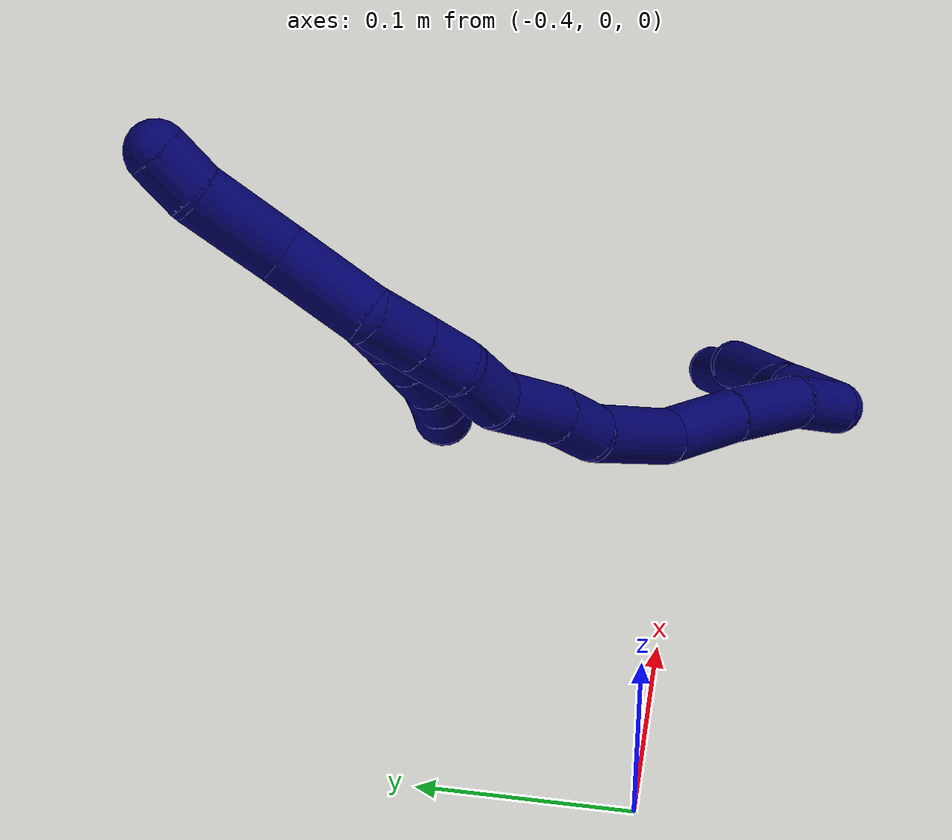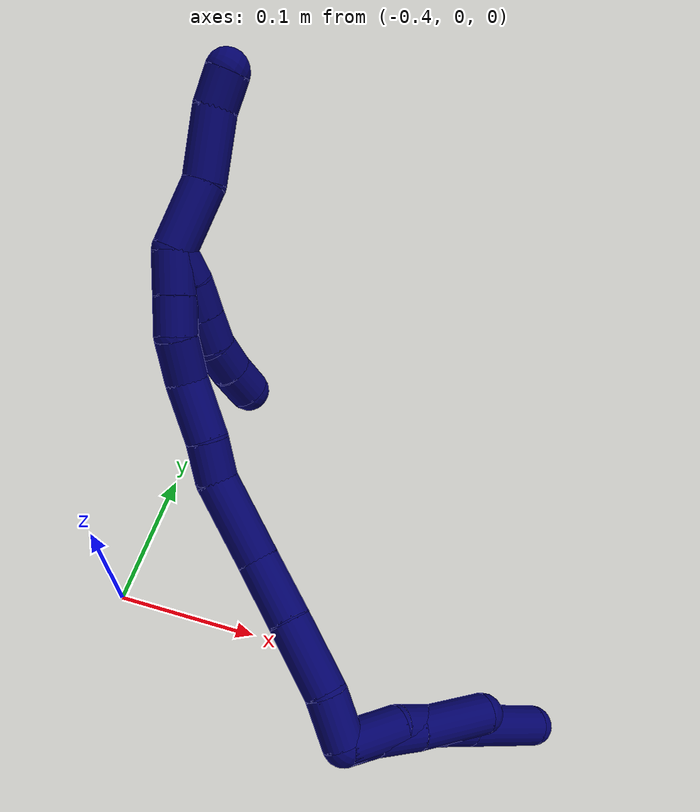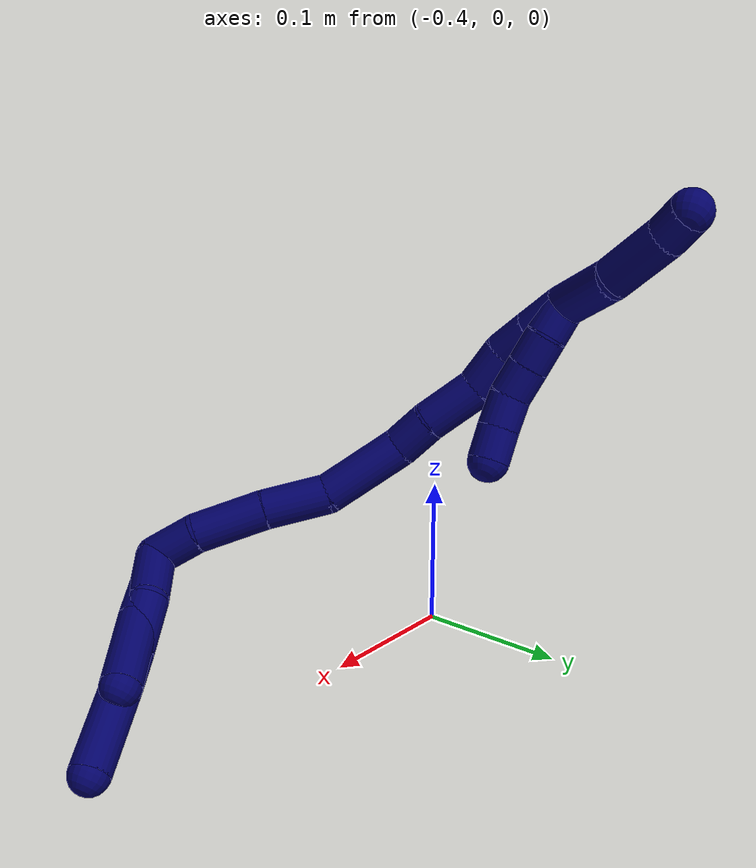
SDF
<sdf version="1.7">
 <world name="default">
  <model name="7">
   <static>0</static>
   <link name="7">
    <collision name="collision-cylinder-e_1_2_8">
     <pose>-0.005158 0.008258 -0.015625 -2.65542 -0.283959 1.04577</pose>
     <geometry><cylinder><radius>0.0125</radius><length>0.036821</length></cylinder></geometry>
     <surface>
      <friction><ode><mu>1.16</mu><mu2>1.16</mu2><slip1>0</slip1><slip2>0</slip2></ode></friction>
      <contact><ode><kp>1e+06</kp><kd>1</kd><max_vel>0</max_vel><min_depth>0.001</min_depth></ode></contact>
     </surface>
    </collision>
    <visual name="visual-cylinder-e_1_2_8">
     <pose>-0.005158 0.008258 -0.015625 -2.65542 -0.283959 1.04577</pose>
     <geometry><cylinder><radius>0.0125</radius><length>0.036821</length></cylinder></geometry>
     <material><ambient>0.003922 0 0.403922 1</ambient></material>
    </visual>
    <collision name="collision-cylinder-e_2_8_9">
     <pose>-0.013663 0.01979 -0.048232 -2.95112 -0.191185 1.57453</pose>
     <geometry><cylinder><radius>0.0125</radius><length>0.03523</length></cylinder></geometry>
     <surface>
      <friction><ode><mu>1.16</mu><mu2>1.16</mu2><slip1>0</slip1><slip2>0</slip2></ode></friction>
      <contact><ode><kp>1e+06</kp><kd>1</kd><max_vel>0</max_vel><min_depth>0.001</min_depth></ode></contact>
     </surface>
    </collision>
    <visual name="visual-cylinder-e_2_8_9">
     <pose>-0.013663 0.01979 -0.048232 -2.95112 -0.191185 1.57453</pose>
     <geometry><cylinder><radius>0.0125</radius><length>0.03523</length></cylinder></geometry>
     <material><ambient>0.003922 0 0.403922 1</ambient></material>
    </visual>
    <collision name="collision-cylinder-e_3_9_10">
     <pose>-0.018875 0.025199 -0.076164 -2.94904 -0.165636 1.41999</pose>
     <geometry><cylinder><radius>0.0125</radius><length>0.022624</length></cylinder></geometry>
     <surface>
      <friction><ode><mu>1.16</mu><mu2>1.16</mu2><slip1>0</slip1><slip2>0</slip2></ode></friction>
      <contact><ode><kp>1e+06</kp><kd>1</kd><max_vel>0</max_vel><min_depth>0.001</min_depth></ode></contact>
     </surface>
    </collision>
    <visual name="visual-cylinder-e_3_9_10">
     <pose>-0.018875 0.025199 -0.076164 -2.94904 -0.165636 1.41999</pose>
     <geometry><cylinder><radius>0.0125</radius><length>0.022624</length></cylinder></geometry>
     <material><ambient>0.003922 0 0.403922 1</ambient></material>
    </visual>
    <collision name="collision-cylinder-e_4_10_6">
     <pose>-0.024447 0.033891 -0.113733 -2.90006 -0.134383 1.01259</pose>
     <geometry><cylinder><radius>0.0125</radius><length>0.055325</length></cylinder></geometry>
     <surface>
      <friction><ode><mu>1.16</mu><mu2>1.16</mu2><slip1>0</slip1><slip2>0</slip2></ode></friction>
      <contact><ode><kp>1e+06</kp><kd>1</kd><max_vel>0</max_vel><min_depth>0.001</min_depth></ode></contact>
     </surface>
    </collision>
    <visual name="visual-cylinder-e_4_10_6">
     <pose>-0.024447 0.033891 -0.113733 -2.90006 -0.134383 1.01259</pose>
     <geometry><cylinder><radius>0.0125</radius><length>0.055325</length></cylinder></geometry>
     <material><ambient>0.003922 0 0.403922 1</ambient></material>
    </visual>
    <collision name="collision-cylinder-e_1_2_11">
     <pose>-0.002999 0.003931 -0.009198 -2.73767 -0.291273 1.24324</pose>
     <geometry><cylinder><radius>0.0125</radius><length>0.020886</length></cylinder></geometry>
     <surface>
      <friction><ode><mu>1.16</mu><mu2>1.16</mu2><slip1>0</slip1><slip2>0</slip2></ode></friction>
      <contact><ode><kp>1e+06</kp><kd>1</kd><max_vel>0</max_vel><min_depth>0.001</min_depth></ode></contact>
     </surface>
    </collision>
    <visual name="visual-cylinder-e_1_2_11">
     <pose>-0.002999 0.003931 -0.009198 -2.73767 -0.291273 1.24324</pose>
     <geometry><cylinder><radius>0.0125</radius><length>0.020886</length></cylinder></geometry>
     <material><ambient>0.003922 0 0.403922 1</ambient></material>
    </visual>
    <collision name="collision-cylinder-e_2_11_12">
     <pose>-0.008493 0.013252 -0.031923 -2.76248 -0.169695 0.834534</pose>
     <geometry><cylinder><radius>0.0125</radius><length>0.029545</length></cylinder></geometry>
     <surface>
      <friction><ode><mu>1.16</mu><mu2>1.16</mu2><slip1>0</slip1><slip2>0</slip2></ode></friction>
      <contact><ode><kp>1e+06</kp><kd>1</kd><max_vel>0</max_vel><min_depth>0.001</min_depth></ode></contact>
     </surface>
    </collision>
    <visual name="visual-cylinder-e_2_11_12">
     <pose>-0.008493 0.013252 -0.031923 -2.76248 -0.169695 0.834534</pose>
     <geometry><cylinder><radius>0.0125</radius><length>0.029545</length></cylinder></geometry>
     <material><ambient>0.003922 0 0.403922 1</ambient></material>
    </visual>
    <collision name="collision-cylinder-e_3_12_5">
     <pose>-0.016473 0.028721 -0.067417 -2.71137 -0.223156 0.947669</pose>
     <geometry><cylinder><radius>0.0125</radius><length>0.049569</length></cylinder></geometry>
     <surface>
      <friction><ode><mu>1.16</mu><mu2>1.16</mu2><slip1>0</slip1><slip2>0</slip2></ode></friction>
      <contact><ode><kp>1e+06</kp><kd>1</kd><max_vel>0</max_vel><min_depth>0.001</min_depth></ode></contact>
     </surface>
    </collision>
    <visual name="visual-cylinder-e_3_12_5">
     <pose>-0.016473 0.028721 -0.067417 -2.71137 -0.223156 0.947669</pose>
     <geometry><cylinder><radius>0.0125</radius><length>0.049569</length></cylinder></geometry>
     <material><ambient>0.003922 0 0.403922 1</ambient></material>
    </visual>
    <collision name="collision-cylinder-e_1_2_13">
     <pose>-0.009245 0.006906 0.009767 -0.615445 -0.65794 0.216145</pose>
     <geometry><cylinder><radius>0.0125</radius><length>0.030237</length></cylinder></geometry>
     <surface>
      <friction><ode><mu>1.16</mu><mu2>1.16</mu2><slip1>0</slip1><slip2>0</slip2></ode></friction>
      <contact><ode><kp>1e+06</kp><kd>1</kd><max_vel>0</max_vel><min_depth>0.001</min_depth></ode></contact>
     </surface>
    </collision>
    <visual name="visual-cylinder-e_1_2_13">
     <pose>-0.009245 0.006906 0.009767 -0.615445 -0.65794 0.216145</pose>
     <geometry><cylinder><radius>0.0125</radius><length>0.030237</length></cylinder></geometry>
     <material><ambient>0.003922 0 0.403922 1</ambient></material>
    </visual>
    <collision name="collision-cylinder-e_2_13_14">
     <pose>-0.034908 0.01951 0.033301 -0.392406 -0.833883 0.175613</pose>
     <geometry><cylinder><radius>0.0125</radius><length>0.044341</length></cylinder></geometry>
     <surface>
      <friction><ode><mu>1.16</mu><mu2>1.16</mu2><slip1>0</slip1><slip2>0</slip2></ode></friction>
      <contact><ode><kp>1e+06</kp><kd>1</kd><max_vel>0</max_vel><min_depth>0.001</min_depth></ode></contact>
     </surface>
    </collision>
    <visual name="visual-cylinder-e_2_13_14">
     <pose>-0.034908 0.01951 0.033301 -0.392406 -0.833883 0.175613</pose>
     <geometry><cylinder><radius>0.0125</radius><length>0.044341</length></cylinder></geometry>
     <material><ambient>0.003922 0 0.403922 1</ambient></material>
    </visual>
    <collision name="collision-cylinder-e_3_14_15">
     <pose>-0.067236 0.029203 0.058466 -0.337143 -0.921461 0.168547</pose>
     <geometry><cylinder><radius>0.0125</radius><length>0.039951</length></cylinder></geometry>
     <surface>
      <friction><ode><mu>1.16</mu><mu2>1.16</mu2><slip1>0</slip1><slip2>0</slip2></ode></friction>
      <contact><ode><kp>1e+06</kp><kd>1</kd><max_vel>0</max_vel><min_depth>0.001</min_depth></ode></contact>
     </surface>
    </collision>
    <visual name="visual-cylinder-e_3_14_15">
     <pose>-0.067236 0.029203 0.058466 -0.337143 -0.921461 0.168547</pose>
     <geometry><cylinder><radius>0.0125</radius><length>0.039951</length></cylinder></geometry>
     <material><ambient>0.003922 0 0.403922 1</ambient></material>
    </visual>
    <collision name="collision-cylinder-e_4_15_16">
     <pose>-0.097696 0.042768 0.089549 -0.452505 -0.586666 0.138835</pose>
     <geometry><cylinder><radius>0.0125</radius><length>0.052566</length></cylinder></geometry>
     <surface>
      <friction><ode><mu>1.16</mu><mu2>1.16</mu2><slip1>0</slip1><slip2>0</slip2></ode></friction>
      <contact><ode><kp>1e+06</kp><kd>1</kd><max_vel>0</max_vel><min_depth>0.001</min_depth></ode></contact>
     </surface>
    </collision>
    <visual name="visual-cylinder-e_4_15_16">
     <pose>-0.097696 0.042768 0.089549 -0.452505 -0.586666 0.138835</pose>
     <geometry><cylinder><radius>0.0125</radius><length>0.052566</length></cylinder></geometry>
     <material><ambient>0.003922 0 0.403922 1</ambient></material>
    </visual>
    <collision name="collision-cylinder-e_5_16_17">
     <pose>-0.117323 0.059843 0.117251 -0.75245 -0.433059 0.173366</pose>
     <geometry><cylinder><radius>0.0125</radius><length>0.024197</length></cylinder></geometry>
     <surface>
      <friction><ode><mu>1.16</mu><mu2>1.16</mu2><slip1>0</slip1><slip2>0</slip2></ode></friction>
      <contact><ode><kp>1e+06</kp><kd>1</kd><max_vel>0</max_vel><min_depth>0.001</min_depth></ode></contact>
     </surface>
    </collision>
    <visual name="visual-cylinder-e_5_16_17">
     <pose>-0.117323 0.059843 0.117251 -0.75245 -0.433059 0.173366</pose>
     <geometry><cylinder><radius>0.0125</radius><length>0.024197</length></cylinder></geometry>
     <material><ambient>0.003922 0 0.403922 1</ambient></material>
    </visual>
    <collision name="collision-cylinder-e_6_17_18">
     <pose>-0.131748 0.076242 0.137488 -0.629176 -0.553922 0.184472</pose>
     <geometry><cylinder><radius>0.0125</radius><length>0.035542</length></cylinder></geometry>
     <surface>
      <friction><ode><mu>1.16</mu><mu2>1.16</mu2><slip1>0</slip1><slip2>0</slip2></ode></friction>
      <contact><ode><kp>1e+06</kp><kd>1</kd><max_vel>0</max_vel><min_depth>0.001</min_depth></ode></contact>
     </surface>
    </collision>
    <visual name="visual-cylinder-e_6_17_18">
     <pose>-0.131748 0.076242 0.137488 -0.629176 -0.553922 0.184472</pose>
     <geometry><cylinder><radius>0.0125</radius><length>0.035542</length></cylinder></geometry>
     <material><ambient>0.003922 0 0.403922 1</ambient></material>
    </visual>
    <collision name="collision-cylinder-e_7_18_19">
     <pose>-0.144137 0.093953 0.159082 -0.754751 -0.232017 0.092314</pose>
     <geometry><cylinder><radius>0.0125</radius><length>0.026446</length></cylinder></geometry>
     <surface>
      <friction><ode><mu>1.16</mu><mu2>1.16</mu2><slip1>0</slip1><slip2>0</slip2></ode></friction>
      <contact><ode><kp>1e+06</kp><kd>1</kd><max_vel>0</max_vel><min_depth>0.001</min_depth></ode></contact>
     </surface>
    </collision>
    <visual name="visual-cylinder-e_7_18_19">
     <pose>-0.144137 0.093953 0.159082 -0.754751 -0.232017 0.092314</pose>
     <geometry><cylinder><radius>0.0125</radius><length>0.026446</length></cylinder></geometry>
     <material><ambient>0.003922 0 0.403922 1</ambient></material>
    </visual>
    <collision name="collision-cylinder-e_8_19_20">
     <pose>-0.152051 0.111234 0.174042 -0.98744 -0.447995 0.243998</pose>
     <geometry><cylinder><radius>0.0125</radius><length>0.022504</length></cylinder></geometry>
     <surface>
      <friction><ode><mu>1.16</mu><mu2>1.16</mu2><slip1>0</slip1><slip2>0</slip2></ode></friction>
      <contact><ode><kp>1e+06</kp><kd>1</kd><max_vel>0</max_vel><min_depth>0.001</min_depth></ode></contact>
     </surface>
    </collision>
    <visual name="visual-cylinder-e_8_19_20">
     <pose>-0.152051 0.111234 0.174042 -0.98744 -0.447995 0.243998</pose>
     <geometry><cylinder><radius>0.0125</radius><length>0.022504</length></cylinder></geometry>
     <material><ambient>0.003922 0 0.403922 1</ambient></material>
    </visual>
    <collision name="collision-cylinder-e_9_20_1">
     <pose>-0.162269 0.128742 0.18565 -0.98333 -0.457109 0.247872</pose>
     <geometry><cylinder><radius>0.0125</radius><length>0.024217</length></cylinder></geometry>
     <surface>
      <friction><ode><mu>1.16</mu><mu2>1.16</mu2><slip1>0</slip1><slip2>0</slip2></ode></friction>
      <contact><ode><kp>1e+06</kp><kd>1</kd><max_vel>0</max_vel><min_depth>0.001</min_depth></ode></contact>
     </surface>
    </collision>
    <visual name="visual-cylinder-e_9_20_1">
     <pose>-0.162269 0.128742 0.18565 -0.98333 -0.457109 0.247872</pose>
     <geometry><cylinder><radius>0.0125</radius><length>0.024217</length></cylinder></geometry>
     <material><ambient>0.003922 0 0.403922 1</ambient></material>
    </visual>
    <collision name="collision-cylinder-e_1_1_21">
     <pose>-0.175848 0.156086 0.193518 -1.47027 -0.420922 0.381624</pose>
     <geometry><cylinder><radius>0.0125</radius><length>0.040304</length></cylinder></geometry>
     <surface>
      <friction><ode><mu>1.16</mu><mu2>1.16</mu2><slip1>0</slip1><slip2>0</slip2></ode></friction>
      <contact><ode><kp>1e+06</kp><kd>1</kd><max_vel>0</max_vel><min_depth>0.001</min_depth></ode></contact>
     </surface>
    </collision>
    <visual name="visual-cylinder-e_1_1_21">
     <pose>-0.175848 0.156086 0.193518 -1.47027 -0.420922 0.381624</pose>
     <geometry><cylinder><radius>0.0125</radius><length>0.040304</length></cylinder></geometry>
     <material><ambient>0.003922 0 0.403922 1</ambient></material>
    </visual>
    <collision name="collision-cylinder-e_2_21_22">
     <pose>-0.19179 0.190955 0.202539 -1.16216 -0.403512 0.267049</pose>
     <geometry><cylinder><radius>0.0125</radius><length>0.039265</length></cylinder></geometry>
     <surface>
      <friction><ode><mu>1.16</mu><mu2>1.16</mu2><slip1>0</slip1><slip2>0</slip2></ode></friction>
      <contact><ode><kp>1e+06</kp><kd>1</kd><max_vel>0</max_vel><min_depth>0.001</min_depth></ode></contact>
     </surface>
    </collision>
    <visual name="visual-cylinder-e_2_21_22">
     <pose>-0.19179 0.190955 0.202539 -1.16216 -0.403512 0.267049</pose>
     <geometry><cylinder><radius>0.0125</radius><length>0.039265</length></cylinder></geometry>
     <material><ambient>0.003922 0 0.403922 1</ambient></material>
    </visual>
    <collision name="collision-cylinder-e_3_22_4">
     <pose>-0.201798 0.217174 0.212151 -1.3233 -0.226948 0.177035</pose>
     <geometry><cylinder><radius>0.0125</radius><length>0.020431</length></cylinder></geometry>
     <surface>
      <friction><ode><mu>1.16</mu><mu2>1.16</mu2><slip1>0</slip1><slip2>0</slip2></ode></friction>
      <contact><ode><kp>1e+06</kp><kd>1</kd><max_vel>0</max_vel><min_depth>0.001</min_depth></ode></contact>
     </surface>
    </collision>
    <visual name="visual-cylinder-e_3_22_4">
     <pose>-0.201798 0.217174 0.212151 -1.3233 -0.226948 0.177035</pose>
     <geometry><cylinder><radius>0.0125</radius><length>0.020431</length></cylinder></geometry>
     <material><ambient>0.003922 0 0.403922 1</ambient></material>
    </visual>
    <collision name="collision-cylinder-e_1_1_23">
     <pose>-0.166389 0.133074 0.182937 2.64698 0.12277 0.477586</pose>
     <geometry><cylinder><radius>0.0125</radius><length>0.02</length></cylinder></geometry>
     <surface>
      <friction><ode><mu>1.16</mu><mu2>1.16</mu2><slip1>0</slip1><slip2>0</slip2></ode></friction>
      <contact><ode><kp>1e+06</kp><kd>1</kd><max_vel>0</max_vel><min_depth>0.001</min_depth></ode></contact>
     </surface>
    </collision>
    <visual name="visual-cylinder-e_1_1_23">
     <pose>-0.166389 0.133074 0.182937 2.64698 0.12277 0.477586</pose>
     <geometry><cylinder><radius>0.0125</radius><length>0.02</length></cylinder></geometry>
     <material><ambient>0.003922 0 0.403922 1</ambient></material>
    </visual>
    <collision name="collision-cylinder-e_2_23_24">
     <pose>-0.163975 0.122401 0.166262 2.49758 0.119159 0.353854</pose>
     <geometry><cylinder><radius>0.0125</radius><length>0.02</length></cylinder></geometry>
     <surface>
      <friction><ode><mu>1.16</mu><mu2>1.16</mu2><slip1>0</slip1><slip2>0</slip2></ode></friction>
      <contact><ode><kp>1e+06</kp><kd>1</kd><max_vel>0</max_vel><min_depth>0.001</min_depth></ode></contact>
     </surface>
    </collision>
    <visual name="visual-cylinder-e_2_23_24">
     <pose>-0.163975 0.122401 0.166262 2.49758 0.119159 0.353854</pose>
     <geometry><cylinder><radius>0.0125</radius><length>0.02</length></cylinder></geometry>
     <material><ambient>0.003922 0 0.403922 1</ambient></material>
    </visual>
    <collision name="collision-cylinder-e_3_24_25">
     <pose>-0.16147 0.110647 0.150277 2.5175 0.132059 0.404373</pose>
     <geometry><cylinder><radius>0.0125</radius><length>0.02</length></cylinder></geometry>
     <surface>
      <friction><ode><mu>1.16</mu><mu2>1.16</mu2><slip1>0</slip1><slip2>0</slip2></ode></friction>
      <contact><ode><kp>1e+06</kp><kd>1</kd><max_vel>0</max_vel><min_depth>0.001</min_depth></ode></contact>
     </surface>
    </collision>
    <visual name="visual-cylinder-e_3_24_25">
     <pose>-0.16147 0.110647 0.150277 2.5175 0.132059 0.404373</pose>
     <geometry><cylinder><radius>0.0125</radius><length>0.02</length></cylinder></geometry>
     <material><ambient>0.003922 0 0.403922 1</ambient></material>
    </visual>
    <collision name="collision-cylinder-e_4_25_26">
     <pose>-0.160813 0.100761 0.133133 2.71887 -0.06607 -0.305629</pose>
     <geometry><cylinder><radius>0.0125</radius><length>0.02</length></cylinder></geometry>
     <surface>
      <friction><ode><mu>1.16</mu><mu2>1.16</mu2><slip1>0</slip1><slip2>0</slip2></ode></friction>
      <contact><ode><kp>1e+06</kp><kd>1</kd><max_vel>0</max_vel><min_depth>0.001</min_depth></ode></contact>
     </surface>
    </collision>
    <visual name="visual-cylinder-e_4_25_26">
     <pose>-0.160813 0.100761 0.133133 2.71887 -0.06607 -0.305629</pose>
     <geometry><cylinder><radius>0.0125</radius><length>0.02</length></cylinder></geometry>
     <material><ambient>0.003922 0 0.403922 1</ambient></material>
    </visual>
    <collision name="collision-cylinder-e_5_26_3">
     <pose>-0.162506 0.093436 0.114626 2.81069 -0.103486 -0.601497</pose>
     <geometry><cylinder><radius>0.0125</radius><length>0.02</length></cylinder></geometry>
     <surface>
      <friction><ode><mu>1.16</mu><mu2>1.16</mu2><slip1>0</slip1><slip2>0</slip2></ode></friction>
      <contact><ode><kp>1e+06</kp><kd>1</kd><max_vel>0</max_vel><min_depth>0.001</min_depth></ode></contact>
     </surface>
    </collision>
    <visual name="visual-cylinder-e_5_26_3">
     <pose>-0.162506 0.093436 0.114626 2.81069 -0.103486 -0.601497</pose>
     <geometry><cylinder><radius>0.0125</radius><length>0.02</length></cylinder></geometry>
     <material><ambient>0.003922 0 0.403922 1</ambient></material>
    </visual>
    <collision name="collision-sphere-3">
     <pose>-0.163539 0.090204 0.105219 0 -0 0</pose>
     <geometry><sphere><radius>0.0125</radius></sphere></geometry>
     <surface>
      <friction><ode><mu>1.16</mu><mu2>1.16</mu2><slip1>0</slip1><slip2>0</slip2></ode></friction>
      <contact><ode><kp>1e+06</kp><kd>1</kd><max_vel>0</max_vel><min_depth>0.001</min_depth></ode></contact>
     </surface>
    </collision>
    <visual name="visual-sphere-3">
     <pose>-0.163539 0.090204 0.105219 0 -0 0</pose>
     <geometry><sphere><radius>0.0125</radius></sphere></geometry>
     <material><ambient>0.003922 0 0.403922 1</ambient></material>
    </visual>
    <collision name="collision-sphere-26">
     <pose>-0.161473 0.096667 0.124033 0 -0 0</pose>
     <geometry><sphere><radius>0.0125</radius></sphere></geometry>
     <surface>
      <friction><ode><mu>1.16</mu><mu2>1.16</mu2><slip1>0</slip1><slip2>0</slip2></ode></friction>
      <contact><ode><kp>1e+06</kp><kd>1</kd><max_vel>0</max_vel><min_depth>0.001</min_depth></ode></contact>
     </surface>
    </collision>
    <visual name="visual-sphere-26">
     <pose>-0.161473 0.096667 0.124033 0 -0 0</pose>
     <geometry><sphere><radius>0.0125</radius></sphere></geometry>
     <material><ambient>0.003922 0 0.403922 1</ambient></material>
    </visual>
    <collision name="collision-sphere-25">
     <pose>-0.160153 0.104854 0.142233 0 -0 0</pose>
     <geometry><sphere><radius>0.0125</radius></sphere></geometry>
     <surface>
      <friction><ode><mu>1.16</mu><mu2>1.16</mu2><slip1>0</slip1><slip2>0</slip2></ode></friction>
      <contact><ode><kp>1e+06</kp><kd>1</kd><max_vel>0</max_vel><min_depth>0.001</min_depth></ode></contact>
     </surface>
    </collision>
    <visual name="visual-sphere-25">
     <pose>-0.160153 0.104854 0.142233 0 -0 0</pose>
     <geometry><sphere><radius>0.0125</radius></sphere></geometry>
     <material><ambient>0.003922 0 0.403922 1</ambient></material>
    </visual>
    <collision name="collision-sphere-24">
     <pose>-0.162786 0.11644 0.158321 0 -0 0</pose>
     <geometry><sphere><radius>0.0125</radius></sphere></geometry>
     <surface>
      <friction><ode><mu>1.16</mu><mu2>1.16</mu2><slip1>0</slip1><slip2>0</slip2></ode></friction>
      <contact><ode><kp>1e+06</kp><kd>1</kd><max_vel>0</max_vel><min_depth>0.001</min_depth></ode></contact>
     </surface>
    </collision>
    <visual name="visual-sphere-24">
     <pose>-0.162786 0.11644 0.158321 0 -0 0</pose>
     <geometry><sphere><radius>0.0125</radius></sphere></geometry>
     <material><ambient>0.003922 0 0.403922 1</ambient></material>
    </visual>
    <collision name="collision-sphere-23">
     <pose>-0.165164 0.128363 0.174202 0 -0 0</pose>
     <geometry><sphere><radius>0.0125</radius></sphere></geometry>
     <surface>
      <friction><ode><mu>1.16</mu><mu2>1.16</mu2><slip1>0</slip1><slip2>0</slip2></ode></friction>
      <contact><ode><kp>1e+06</kp><kd>1</kd><max_vel>0</max_vel><min_depth>0.001</min_depth></ode></contact>
     </surface>
    </collision>
    <visual name="visual-sphere-23">
     <pose>-0.165164 0.128363 0.174202 0 -0 0</pose>
     <geometry><sphere><radius>0.0125</radius></sphere></geometry>
     <material><ambient>0.003922 0 0.403922 1</ambient></material>
    </visual>
    <collision name="collision-sphere-4">
     <pose>-0.204096 0.226824 0.21459 0 -0 0</pose>
     <geometry><sphere><radius>0.0125</radius></sphere></geometry>
     <surface>
      <friction><ode><mu>1.16</mu><mu2>1.16</mu2><slip1>0</slip1><slip2>0</slip2></ode></friction>
      <contact><ode><kp>1e+06</kp><kd>1</kd><max_vel>0</max_vel><min_depth>0.001</min_depth></ode></contact>
     </surface>
    </collision>
    <visual name="visual-sphere-4">
     <pose>-0.204096 0.226824 0.21459 0 -0 0</pose>
     <geometry><sphere><radius>0.0125</radius></sphere></geometry>
     <material><ambient>0.003922 0 0.403922 1</ambient></material>
    </visual>
    <collision name="collision-sphere-22">
     <pose>-0.199499 0.207524 0.209713 0 -0 0</pose>
     <geometry><sphere><radius>0.0125</radius></sphere></geometry>
     <surface>
      <friction><ode><mu>1.16</mu><mu2>1.16</mu2><slip1>0</slip1><slip2>0</slip2></ode></friction>
      <contact><ode><kp>1e+06</kp><kd>1</kd><max_vel>0</max_vel><min_depth>0.001</min_depth></ode></contact>
     </surface>
    </collision>
    <visual name="visual-sphere-22">
     <pose>-0.199499 0.207524 0.209713 0 -0 0</pose>
     <geometry><sphere><radius>0.0125</radius></sphere></geometry>
     <material><ambient>0.003922 0 0.403922 1</ambient></material>
    </visual>
    <collision name="collision-sphere-21">
     <pose>-0.184082 0.174386 0.195364 0 -0 0</pose>
     <geometry><sphere><radius>0.0125</radius></sphere></geometry>
     <surface>
      <friction><ode><mu>1.16</mu><mu2>1.16</mu2><slip1>0</slip1><slip2>0</slip2></ode></friction>
      <contact><ode><kp>1e+06</kp><kd>1</kd><max_vel>0</max_vel><min_depth>0.001</min_depth></ode></contact>
     </surface>
    </collision>
    <visual name="visual-sphere-21">
     <pose>-0.184082 0.174386 0.195364 0 -0 0</pose>
     <geometry><sphere><radius>0.0125</radius></sphere></geometry>
     <material><ambient>0.003922 0 0.403922 1</ambient></material>
    </visual>
    <collision name="collision-sphere-1">
     <pose>-0.167613 0.137785 0.191672 0 -0 0</pose>
     <geometry><sphere><radius>0.0125</radius></sphere></geometry>
     <surface>
      <friction><ode><mu>1.16</mu><mu2>1.16</mu2><slip1>0</slip1><slip2>0</slip2></ode></friction>
      <contact><ode><kp>1e+06</kp><kd>1</kd><max_vel>0</max_vel><min_depth>0.001</min_depth></ode></contact>
     </surface>
    </collision>
    <visual name="visual-sphere-1">
     <pose>-0.167613 0.137785 0.191672 0 -0 0</pose>
     <geometry><sphere><radius>0.0125</radius></sphere></geometry>
     <material><ambient>0.003922 0 0.403922 1</ambient></material>
    </visual>
    <collision name="collision-sphere-11">
     <pose>-0.005998 0.007863 -0.018396 0 -0 0</pose>
     <geometry><sphere><radius>0.0125</radius></sphere></geometry>
     <surface>
      <friction><ode><mu>1.16</mu><mu2>1.16</mu2><slip1>0</slip1><slip2>0</slip2></ode></friction>
      <contact><ode><kp>1e+06</kp><kd>1</kd><max_vel>0</max_vel><min_depth>0.001</min_depth></ode></contact>
     </surface>
    </collision>
    <visual name="visual-sphere-11">
     <pose>-0.005998 0.007863 -0.018396 0 -0 0</pose>
     <geometry><sphere><radius>0.0125</radius></sphere></geometry>
     <material><ambient>0.003922 0 0.403922 1</ambient></material>
    </visual>
    <collision name="collision-sphere-6">
     <pose>-0.028153 0.040448 -0.14035 0 -0 0</pose>
     <geometry><sphere><radius>0.0125</radius></sphere></geometry>
     <surface>
      <friction><ode><mu>1.16</mu><mu2>1.16</mu2><slip1>0</slip1><slip2>0</slip2></ode></friction>
      <contact><ode><kp>1e+06</kp><kd>1</kd><max_vel>0</max_vel><min_depth>0.001</min_depth></ode></contact>
     </surface>
    </collision>
    <visual name="visual-sphere-6">
     <pose>-0.028153 0.040448 -0.14035 0 -0 0</pose>
     <geometry><sphere><radius>0.0125</radius></sphere></geometry>
     <material><ambient>0.003922 0 0.403922 1</ambient></material>
    </visual>
    <collision name="collision-sphere-10">
     <pose>-0.02074 0.027334 -0.087115 0 -0 0</pose>
     <geometry><sphere><radius>0.0125</radius></sphere></geometry>
     <surface>
      <friction><ode><mu>1.16</mu><mu2>1.16</mu2><slip1>0</slip1><slip2>0</slip2></ode></friction>
      <contact><ode><kp>1e+06</kp><kd>1</kd><max_vel>0</max_vel><min_depth>0.001</min_depth></ode></contact>
     </surface>
    </collision>
    <visual name="visual-sphere-10">
     <pose>-0.02074 0.027334 -0.087115 0 -0 0</pose>
     <geometry><sphere><radius>0.0125</radius></sphere></geometry>
     <material><ambient>0.003922 0 0.403922 1</ambient></material>
    </visual>
    <collision name="collision-sphere-9">
     <pose>-0.01701 0.023064 -0.065213 0 -0 0</pose>
     <geometry><sphere><radius>0.0125</radius></sphere></geometry>
     <surface>
      <friction><ode><mu>1.16</mu><mu2>1.16</mu2><slip1>0</slip1><slip2>0</slip2></ode></friction>
      <contact><ode><kp>1e+06</kp><kd>1</kd><max_vel>0</max_vel><min_depth>0.001</min_depth></ode></contact>
     </surface>
    </collision>
    <visual name="visual-sphere-9">
     <pose>-0.01701 0.023064 -0.065213 0 -0 0</pose>
     <geometry><sphere><radius>0.0125</radius></sphere></geometry>
     <material><ambient>0.003922 0 0.403922 1</ambient></material>
    </visual>
    <collision name="collision-sphere-2">
     <geometry><sphere><radius>0.0125</radius></sphere></geometry>
     <surface>
      <friction><ode><mu>1.16</mu><mu2>1.16</mu2><slip1>0</slip1><slip2>0</slip2></ode></friction>
      <contact><ode><kp>1e+06</kp><kd>1</kd><max_vel>0</max_vel><min_depth>0.001</min_depth></ode></contact>
     </surface>
    </collision>
    <visual name="visual-sphere-2">
     <geometry><sphere><radius>0.0125</radius></sphere></geometry>
     <material><ambient>0.003922 0 0.403922 1</ambient></material>
    </visual>
    <collision name="collision-sphere-19">
     <pose>-0.147177 0.102769 0.168456 0 -0 0</pose>
     <geometry><sphere><radius>0.0125</radius></sphere></geometry>
     <surface>
      <friction><ode><mu>1.16</mu><mu2>1.16</mu2><slip1>0</slip1><slip2>0</slip2></ode></friction>
      <contact><ode><kp>1e+06</kp><kd>1</kd><max_vel>0</max_vel><min_depth>0.001</min_depth></ode></contact>
     </surface>
    </collision>
    <visual name="visual-sphere-19">
     <pose>-0.147177 0.102769 0.168456 0 -0 0</pose>
     <geometry><sphere><radius>0.0125</radius></sphere></geometry>
     <material><ambient>0.003922 0 0.403922 1</ambient></material>
    </visual>
    <collision name="collision-sphere-8">
     <pose>-0.010316 0.016515 -0.031251 0 -0 0</pose>
     <geometry><sphere><radius>0.0125</radius></sphere></geometry>
     <surface>
      <friction><ode><mu>1.16</mu><mu2>1.16</mu2><slip1>0</slip1><slip2>0</slip2></ode></friction>
      <contact><ode><kp>1e+06</kp><kd>1</kd><max_vel>0</max_vel><min_depth>0.001</min_depth></ode></contact>
     </surface>
    </collision>
    <visual name="visual-sphere-8">
     <pose>-0.010316 0.016515 -0.031251 0 -0 0</pose>
     <geometry><sphere><radius>0.0125</radius></sphere></geometry>
     <material><ambient>0.003922 0 0.403922 1</ambient></material>
    </visual>
    <collision name="collision-sphere-12">
     <pose>-0.010988 0.018641 -0.045449 0 -0 0</pose>
     <geometry><sphere><radius>0.0125</radius></sphere></geometry>
     <surface>
      <friction><ode><mu>1.16</mu><mu2>1.16</mu2><slip1>0</slip1><slip2>0</slip2></ode></friction>
      <contact><ode><kp>1e+06</kp><kd>1</kd><max_vel>0</max_vel><min_depth>0.001</min_depth></ode></contact>
     </surface>
    </collision>
    <visual name="visual-sphere-12">
     <pose>-0.010988 0.018641 -0.045449 0 -0 0</pose>
     <geometry><sphere><radius>0.0125</radius></sphere></geometry>
     <material><ambient>0.003922 0 0.403922 1</ambient></material>
    </visual>
    <collision name="collision-sphere-5">
     <pose>-0.021958 0.038802 -0.089384 0 -0 0</pose>
     <geometry><sphere><radius>0.0125</radius></sphere></geometry>
     <surface>
      <friction><ode><mu>1.16</mu><mu2>1.16</mu2><slip1>0</slip1><slip2>0</slip2></ode></friction>
      <contact><ode><kp>1e+06</kp><kd>1</kd><max_vel>0</max_vel><min_depth>0.001</min_depth></ode></contact>
     </surface>
    </collision>
    <visual name="visual-sphere-5">
     <pose>-0.021958 0.038802 -0.089384 0 -0 0</pose>
     <geometry><sphere><radius>0.0125</radius></sphere></geometry>
     <material><ambient>0.003922 0 0.403922 1</ambient></material>
    </visual>
    <collision name="collision-sphere-13">
     <pose>-0.018489 0.013812 0.019535 0 -0 0</pose>
     <geometry><sphere><radius>0.0125</radius></sphere></geometry>
     <surface>
      <friction><ode><mu>1.16</mu><mu2>1.16</mu2><slip1>0</slip1><slip2>0</slip2></ode></friction>
      <contact><ode><kp>1e+06</kp><kd>1</kd><max_vel>0</max_vel><min_depth>0.001</min_depth></ode></contact>
     </surface>
    </collision>
    <visual name="visual-sphere-13">
     <pose>-0.018489 0.013812 0.019535 0 -0 0</pose>
     <geometry><sphere><radius>0.0125</radius></sphere></geometry>
     <material><ambient>0.003922 0 0.403922 1</ambient></material>
    </visual>
    <collision name="collision-sphere-14">
     <pose>-0.051326 0.025207 0.047068 0 -0 0</pose>
     <geometry><sphere><radius>0.0125</radius></sphere></geometry>
     <surface>
      <friction><ode><mu>1.16</mu><mu2>1.16</mu2><slip1>0</slip1><slip2>0</slip2></ode></friction>
      <contact><ode><kp>1e+06</kp><kd>1</kd><max_vel>0</max_vel><min_depth>0.001</min_depth></ode></contact>
     </surface>
    </collision>
    <visual name="visual-sphere-14">
     <pose>-0.051326 0.025207 0.047068 0 -0 0</pose>
     <geometry><sphere><radius>0.0125</radius></sphere></geometry>
     <material><ambient>0.003922 0 0.403922 1</ambient></material>
    </visual>
    <collision name="collision-sphere-15">
     <pose>-0.083146 0.033198 0.069864 0 -0 0</pose>
     <geometry><sphere><radius>0.0125</radius></sphere></geometry>
     <surface>
      <friction><ode><mu>1.16</mu><mu2>1.16</mu2><slip1>0</slip1><slip2>0</slip2></ode></friction>
      <contact><ode><kp>1e+06</kp><kd>1</kd><max_vel>0</max_vel><min_depth>0.001</min_depth></ode></contact>
     </surface>
    </collision>
    <visual name="visual-sphere-15">
     <pose>-0.083146 0.033198 0.069864 0 -0 0</pose>
     <geometry><sphere><radius>0.0125</radius></sphere></geometry>
     <material><ambient>0.003922 0 0.403922 1</ambient></material>
    </visual>
    <collision name="collision-sphere-16">
     <pose>-0.112246 0.052338 0.109235 0 -0 0</pose>
     <geometry><sphere><radius>0.0125</radius></sphere></geometry>
     <surface>
      <friction><ode><mu>1.16</mu><mu2>1.16</mu2><slip1>0</slip1><slip2>0</slip2></ode></friction>
      <contact><ode><kp>1e+06</kp><kd>1</kd><max_vel>0</max_vel><min_depth>0.001</min_depth></ode></contact>
     </surface>
    </collision>
    <visual name="visual-sphere-16">
     <pose>-0.112246 0.052338 0.109235 0 -0 0</pose>
     <geometry><sphere><radius>0.0125</radius></sphere></geometry>
     <material><ambient>0.003922 0 0.403922 1</ambient></material>
    </visual>
    <collision name="collision-sphere-17">
     <pose>-0.1224 0.067348 0.125268 0 -0 0</pose>
     <geometry><sphere><radius>0.0125</radius></sphere></geometry>
     <surface>
      <friction><ode><mu>1.16</mu><mu2>1.16</mu2><slip1>0</slip1><slip2>0</slip2></ode></friction>
      <contact><ode><kp>1e+06</kp><kd>1</kd><max_vel>0</max_vel><min_depth>0.001</min_depth></ode></contact>
     </surface>
    </collision>
    <visual name="visual-sphere-17">
     <pose>-0.1224 0.067348 0.125268 0 -0 0</pose>
     <geometry><sphere><radius>0.0125</radius></sphere></geometry>
     <material><ambient>0.003922 0 0.403922 1</ambient></material>
    </visual>
    <collision name="collision-sphere-18">
     <pose>-0.141096 0.085136 0.149707 0 -0 0</pose>
     <geometry><sphere><radius>0.0125</radius></sphere></geometry>
     <surface>
      <friction><ode><mu>1.16</mu><mu2>1.16</mu2><slip1>0</slip1><slip2>0</slip2></ode></friction>
      <contact><ode><kp>1e+06</kp><kd>1</kd><max_vel>0</max_vel><min_depth>0.001</min_depth></ode></contact>
     </surface>
    </collision>
    <visual name="visual-sphere-18">
     <pose>-0.141096 0.085136 0.149707 0 -0 0</pose>
     <geometry><sphere><radius>0.0125</radius></sphere></geometry>
     <material><ambient>0.003922 0 0.403922 1</ambient></material>
    </visual>
    <collision name="collision-sphere-20">
     <pose>-0.156925 0.119698 0.179628 0 -0 0</pose>
     <geometry><sphere><radius>0.0125</radius></sphere></geometry>
     <surface>
      <friction><ode><mu>1.16</mu><mu2>1.16</mu2><slip1>0</slip1><slip2>0</slip2></ode></friction>
      <contact><ode><kp>1e+06</kp><kd>1</kd><max_vel>0</max_vel><min_depth>0.001</min_depth></ode></contact>
     </surface>
    </collision>
    <visual name="visual-sphere-20">
     <pose>-0.156925 0.119698 0.179628 0 -0 0</pose>
     <geometry><sphere><radius>0.0125</radius></sphere></geometry>
     <material><ambient>0.003922 0 0.403922 1</ambient></material>
    </visual>
    <inertial>
     <pose>-0.089278 0.068704 0.065897 0 -0 0</pose>
     <mass>0.75</mass>
     <inertia><ixx>0.000107</ixx><ixy>0</ixy><ixz>0</ixz><iyy>9.4e-05</iyy><iyz>0</iyz><izz>-9e-06</izz></inertia>
    </inertial>
   </link>
   <pose>-0.213237 -0.074519 0.088204 0.787183 -0.368639 -1.04486</pose>
  </model>
 </world>
</sdf>
